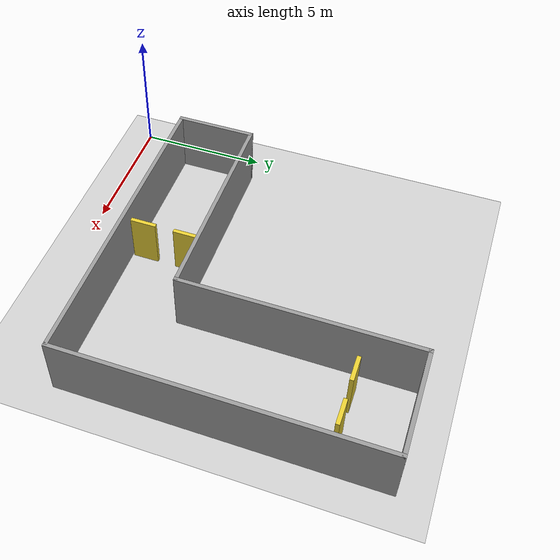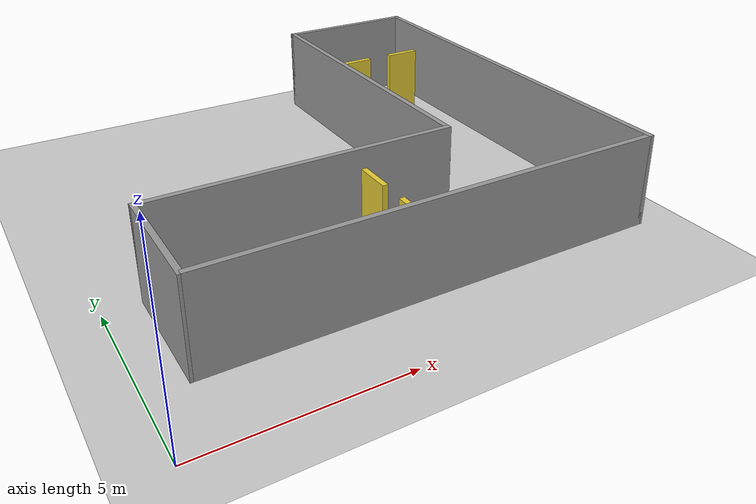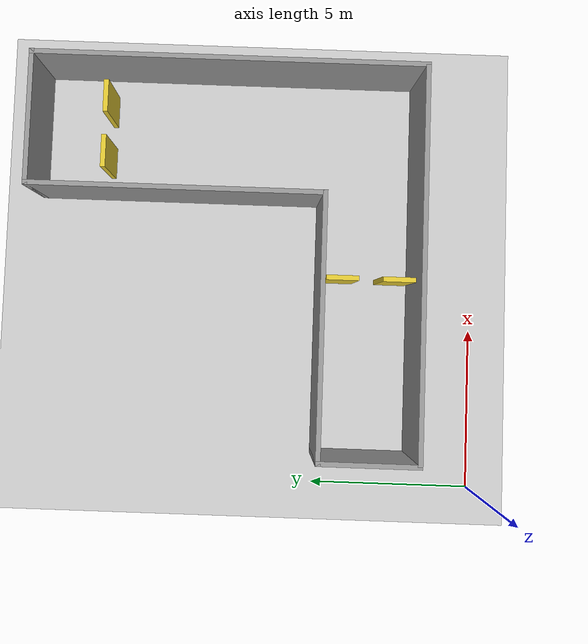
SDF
<sdf version="1.7">
 <world name="default">
  <include><uri>model://sun</uri></include>
  <include><uri>model://ground_plane</uri></include>
  <model name="wall_a_south">
   <static>true</static>
   <pose>7 2 1.25 0 0 0</pose>
   <link name="link">
    <collision name="collision"><geometry><box><size>12.0 0.15 2.5</size></box></geometry></collision>
    <visual name="visual">
     <geometry><box><size>12.0 0.15 2.5</size></box></geometry>
     <material><ambient>0.6 0.6 0.6 1</ambient><diffuse>0.6 0.6 0.6 1</diffuse></material>
    </visual>
   </link>
  </model>
  <model name="wall_a_west">
   <static>true</static>
   <pose>1 3.5 1.25 0 0 0</pose>
   <link name="link">
    <collision name="collision"><geometry><box><size>0.15 3.15 2.5</size></box></geometry></collision>
    <visual name="visual">
     <geometry><box><size>0.15 3.15 2.5</size></box></geometry>
     <material><ambient>0.6 0.6 0.6 1</ambient><diffuse>0.6 0.6 0.6 1</diffuse></material>
    </visual>
   </link>
  </model>
  <model name="wall_a_north">
   <static>true</static>
   <pose>5 5 1.25 0 0 0</pose>
   <link name="link">
    <collision name="collision"><geometry><box><size>8.15 0.15 2.5</size></box></geometry></collision>
    <visual name="visual">
     <geometry><box><size>8.15 0.15 2.5</size></box></geometry>
     <material><ambient>0.6 0.6 0.6 1</ambient><diffuse>0.6 0.6 0.6 1</diffuse></material>
    </visual>
   </link>
  </model>
  <model name="wall_east">
   <static>true</static>
   <pose>13 8 1.25 0 0 0</pose>
   <link name="link">
    <collision name="collision"><geometry><box><size>0.15 12.15 2.5</size></box></geometry></collision>
    <visual name="visual">
     <geometry><box><size>0.15 12.15 2.5</size></box></geometry>
     <material><ambient>0.6 0.6 0.6 1</ambient><diffuse>0.6 0.6 0.6 1</diffuse></material>
    </visual>
   </link>
  </model>
  <model name="wall_b_west">
   <static>true</static>
   <pose>9 9.5 1.25 0 0 0</pose>
   <link name="link">
    <collision name="collision"><geometry><box><size>0.15 9.15 2.5</size></box></geometry></collision>
    <visual name="visual">
     <geometry><box><size>0.15 9.15 2.5</size></box></geometry>
     <material><ambient>0.6 0.6 0.6 1</ambient><diffuse>0.6 0.6 0.6 1</diffuse></material>
    </visual>
   </link>
  </model>
  <model name="wall_b_north">
   <static>true</static>
   <pose>11 14 1.25 0 0 0</pose>
   <link name="link">
    <collision name="collision"><geometry><box><size>4.15 0.15 2.5</size></box></geometry></collision>
    <visual name="visual">
     <geometry><box><size>4.15 0.15 2.5</size></box></geometry>
     <material><ambient>0.6 0.6 0.6 1</ambient><diffuse>0.6 0.6 0.6 1</diffuse></material>
    </visual>
   </link>
  </model>
  <model name="capstone_gate1_south">
   <static>true</static>
   <pose>6.5 2.64 1.0 0 0 0</pose>
   <link name="link">
    <collision name="collision"><geometry><box><size>0.15 1.0 2.0</size></box></geometry></collision>
    <visual name="visual">
     <geometry><box><size>0.15 1.0 2.0</size></box></geometry>
     <material><ambient>0.9 0.8 0.2 1</ambient><diffuse>0.9 0.8 0.2 1</diffuse></material>
    </visual>
   </link>
  </model>
  <model name="capstone_gate1_north">
   <static>true</static>
   <pose>6.5 4.36 1.0 0 0 0</pose>
   <link name="link">
    <collision name="collision"><geometry><box><size>0.15 1.0 2.0</size></box></geometry></collision>
    <visual name="visual">
     <geometry><box><size>0.15 1.0 2.0</size></box></geometry>
     <material><ambient>0.9 0.8 0.2 1</ambient><diffuse>0.9 0.8 0.2 1</diffuse></material>
    </visual>
   </link>
  </model>
  <model name="capstone_gate2_west">
   <static>true</static>
   <pose>10.14 11.8 1.0 0 0 0</pose>
   <link name="link">
    <collision name="collision"><geometry><box><size>1.0 0.15 2.0</size></box></geometry></collision>
    <visual name="visual">
     <geometry><box><size>1.0 0.15 2.0</size></box></geometry>
     <material><ambient>0.9 0.8 0.2 1</ambient><diffuse>0.9 0.8 0.2 1</diffuse></material>
    </visual>
   </link>
  </model>
  <model name="capstone_gate2_east">
   <static>true</static>
   <pose>11.86 11.8 1.0 0 0 0</pose>
   <link name="link">
    <collision name="collision"><geometry><box><size>1.0 0.15 2.0</size></box></geometry></collision>
    <visual name="visual">
     <geometry><box><size>1.0 0.15 2.0</size></box></geometry>
     <material><ambient>0.9 0.8 0.2 1</ambient><diffuse>0.9 0.8 0.2 1</diffuse></material>
    </visual>
   </link>
  </model>
 </world>
</sdf>
